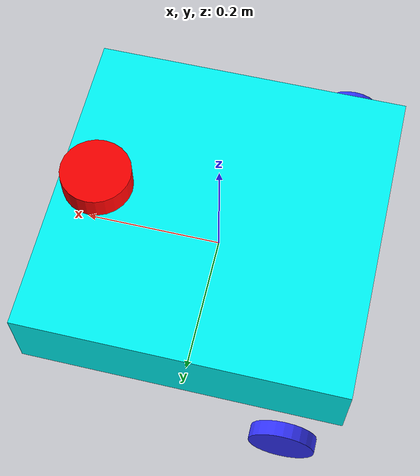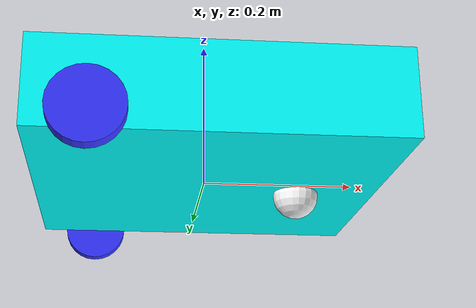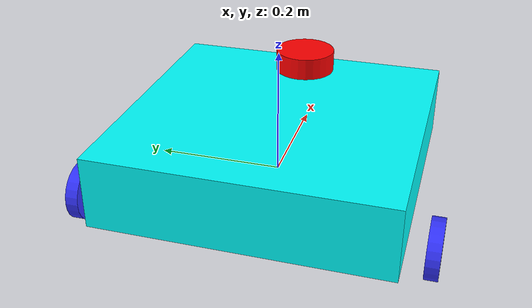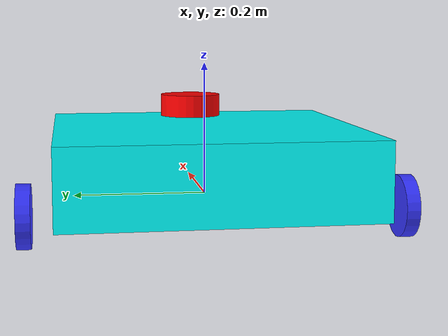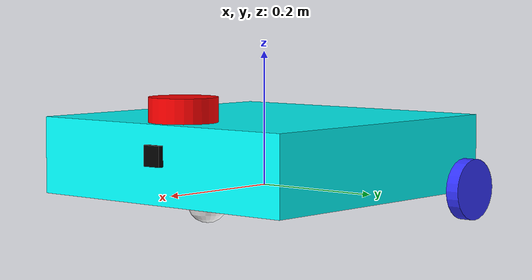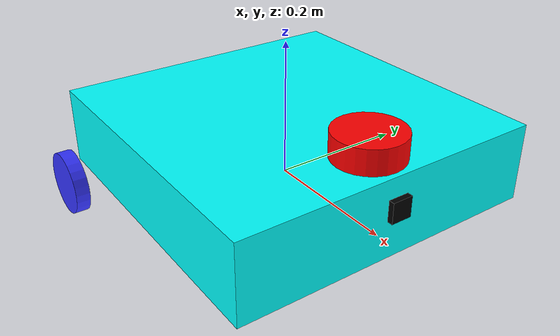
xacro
<?xml version="1.0"?>
<robot xmlns:xacro="http://www.ros.org/wiki/xacro"  name="robot">

    <xacro:include filename="robot_core.xacro" />

    <xacro:include filename="gazebo_control.xacro" />
    <xacro:include filename="lidar.xacro" />
    <xacro:include filename="camera.xacro" />
    <xacro:include filename="imu.xacro" />

</robot>

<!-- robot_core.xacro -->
<robot xmlns:xacro="http://www.ros.org/wiki/xacro" >

    <xacro:include filename="inertial_macros.xacro"/>

    <xacro:property name="chassis_length" value="0.457"/>
    <xacro:property name="chassis_width" value="0.457"/>
    <xacro:property name="chassis_height" value="0.114"/>
    <xacro:property name="chassis_mass" value="1.5"/>
    <xacro:property name="wheel_radius" value="0.045"/>
    <xacro:property name="wheel_thickness" value="0.020"/>
    <xacro:property name="wheel_mass" value="0.07"/>
    <xacro:property name="wheel_offset_x" value="0.226"/>
    <xacro:property name="wheel_offset_y" value="0.2685"/>
    <xacro:property name="wheel_offset_z" value="0.01"/>
    <xacro:property name="caster_wheel_radius" value="0.03"/>
    <xacro:property name="caster_wheel_mass" value="0.01"/>
    <xacro:property name="caster_wheel_offset_x" value="0.08"/>
    <xacro:property name="caster_wheel_offset_z" value="${wheel_offset_z - wheel_radius + caster_wheel_radius}"/>

    <material name="white">
        <color rgba="1 1 1 1" />
    </material>

    <material name="orange">
        <color rgba="1 0.3 0.1 1"/>
    </material>

    <material name="blue">
        <color rgba="0.2 0.2 1 1"/>
    </material>

    <material name="black">
        <color rgba="0 0 0 1"/>
    </material>

    <material name="red">
        <color rgba="1 0 0 1"/>
    </material>
    <material name="Cyan">
        <color rgba="0 1.0 1.0 1.0"/>
    </material>

    <!-- BASE LINK -->

    <link name="base_link">

    </link>

    <!-- BASE_FOOTPRINT LINK -->

    <joint name="base_footprint_joint" type="fixed">
        <parent link="base_link"/>
        <child link="base_footprint"/>
        <origin xyz="0 0 0" rpy="0 0 0"/>
    </joint>

    <link name="base_footprint">
    </link>

    <!-- CHASSIS LINK -->

    <joint name="chassis_joint" type="fixed">
        <parent link="base_link"/>
        <child link="chassis"/>
        <origin xyz="${-wheel_offset_x} 0 ${-wheel_offset_z}"/>
    </joint>

    <link name="chassis">
        <visual>
            <origin xyz="${chassis_length/2} 0 ${chassis_height/2}"/>
            <geometry>
                <box size="${chassis_length} ${chassis_width} ${chassis_height}"/>
            </geometry>
            <material name="Cyan"/>
        </visual>
        <collision>
            <origin xyz="${chassis_length/2} 0 ${chassis_height/2}"/>
            <geometry>
                <box size="${chassis_length} ${chassis_width} ${chassis_height}"/>
            </geometry>
        </collision>
        <xacro:inertial_box mass="0.5" x="${chassis_length}" y="${chassis_width}" z="${chassis_height}">
            <origin xyz="${chassis_length/2} 0 ${chassis_height/2}" rpy="0 0 0"/>
        </xacro:inertial_box>
    </link>

    <gazebo reference="chassis">
        <material>Gazebo/Cyan</material>
    </gazebo>

    <!-- LEFT WHEEL LINK -->

    <joint name="left_wheel_joint" type="continuous">
        <parent link="base_link"/>
        <child link="left_wheel"/>
        <origin xyz="-0.15 ${wheel_offset_y} 0" rpy="-${pi/2} 0 0" />
        <axis xyz="0 0 1"/>
    </joint>

    <link name="left_wheel">
        <visual>
            <geometry>
                <cylinder radius="${wheel_radius}" length="${wheel_thickness}"/>
            </geometry>
            <material name="blue"/>
        </visual>
        <collision>
            <geometry>
                <sphere radius="${wheel_radius}"/>
            </geometry>
        </collision>
        <xacro:inertial_cylinder mass="${wheel_mass}" length="${wheel_thickness}" radius="${wheel_radius}">
            <origin xyz="0 0 0" rpy="0 0 0"/>
        </xacro:inertial_cylinder>
    </link>

    <gazebo reference="left_wheel">
        <material>Gazebo/Blue</material>
    </gazebo>

    <!-- RIGHT WHEEL LINK -->

    <joint name="right_wheel_joint" type="continuous">
        <parent link="base_link"/>
        <child link="right_wheel"/>
        <origin xyz="-0.15 ${-wheel_offset_y} 0" rpy="${pi/2} 0 0" />
        <axis xyz="0 0 -1"/>
    </joint>

    <link name="right_wheel">
        <visual>
            <geometry>
                <cylinder radius="${wheel_radius}" length="${wheel_thickness}"/>
            </geometry>
            <material name="blue"/>
        </visual>
        <collision>
            <geometry>
                <sphere radius="${wheel_radius}"/>
            </geometry>
        </collision>
        <xacro:inertial_cylinder mass="${wheel_mass}" length="${wheel_thickness}" radius="${wheel_radius}">
            <origin xyz="0 0 0" rpy="0 0 0"/>
        </xacro:inertial_cylinder>
    </link>

    <gazebo reference="right_wheel">
        <material>Gazebo/Blue</material>
    </gazebo>

    <!-- CASTER WHEEL LINK -->

    <joint name="caster_wheel_joint" type="fixed">
        <parent link="chassis"/>
        <child link="caster_wheel"/>
        <origin xyz=".35 0 ${caster_wheel_offset_z}"/>
    </joint>

    <link name="caster_wheel">
        <visual>
            <geometry>
                <sphere radius="${caster_wheel_radius}"/>
            </geometry>
            <material name="white"/>
        </visual>
        <collision>
            <geometry>
                <sphere radius="${caster_wheel_radius}"/>
            </geometry>
        </collision>
        <xacro:inertial_sphere mass="${caster_wheel_mass}" radius="${caster_wheel_radius}">
            <origin xyz="0 0 0" rpy="0 0 0"/>
        </xacro:inertial_sphere>
    </link>

    <gazebo reference="caster_wheel">
        <material>Gazebo/White</material>
        <mu1 value="0.001"/>
        <mu2 value="0.001"/>
    </gazebo>

</robot>

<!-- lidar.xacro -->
<robot xmlns:xacro="http://www.ros.org/wiki/xacro" >

    <joint name="laser_joint" type="fixed">
        <parent link="chassis"/>
        <child link="laser"/>
        <origin xyz="0.4 0 0.13" rpy="0 0 3.14"/>
    </joint>

    <link name="laser">
        <visual>
            <geometry>
                <cylinder radius="0.05" length="0.04"/>
            </geometry>
            <material name="red"/>
        </visual>
        <collision>
            <geometry>
                <cylinder radius="0.05" length="0.04"/>
            </geometry>
        </collision>
        <xacro:inertial_cylinder mass="0.1" length="0.04" radius="0.05">
            <origin xyz="0 0 0" rpy="0 0 3.14"/>
        </xacro:inertial_cylinder>
    </link>

    <gazebo reference="laser">
        <material>Gazebo/Red</material>

        <sensor name="laser" type="gpu_lidar">
            <pose> 0 0 0 0 0 0 </pose>
            <visualize>false</visualize>
            <update_rate>10</update_rate>
            <lidar>
                <scan>
                    <horizontal>
                        <samples>360</samples>
                        <min_angle>-3.14</min_angle>
                        <max_angle>3.14</max_angle>
                    </horizontal>
                </scan>
                <range>
                    <min>0.3</min>
                    <max>12</max>
                </range>
            </lidar>
            <topic>scan</topic>
            <gz_frame_id>laser_frame</gz_frame_id>
        </sensor>
    </gazebo>

</robot>

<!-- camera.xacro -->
<robot xmlns:xacro="http://www.ros.org/wiki/xacro" >

    <joint name="camera_joint" type="fixed">
        <parent link="chassis"/>
        <child link="camera_link"/>
         <origin xyz="0.46 0 0.07" rpy="0 0 0"/>
    </joint>

    <link name="camera_link">
        <visual>
            <origin xyz="0 0 0" rpy="0 0 0"/>
            <geometry>
                <box size="0.010 0.03 0.03"/>
            </geometry>
            <material name="black"/>
        </visual>
        <collision>
            <origin xyz="0 0 0" rpy="0 0 0"/>
            <geometry>
                <box size="0.010 0.03 0.03"/>
            </geometry>
        </collision>

    </link>

    <joint name="camera_optical_joint" type="fixed">
        <parent link="camera_link"/>
        <child link="camera_link_optical"/>
        <origin xyz="0 0 0" rpy="${-pi/2} 0 ${-pi/2}"/>
    </joint>

    <link name="camera_link_optical"></link>

    <gazebo reference="camera_link">
        <material>Gazebo/Black</material>

        <sensor name="camera" type="camera">
            <pose> 0 0 0 0 0 0 </pose>
            <visualize>true</visualize>
            <update_rate>10</update_rate>
            <camera>
                <camera_info_topic>camera/camera_info</camera_info_topic>
                <horizontal_fov>1.089</horizontal_fov>
                <image>
                    <format>R8G8B8</format>
                    <width>640</width>
                    <height>480</height>
                </image>
                <clip>
                    <near>0.05</near>
                    <far>8.0</far>
                </clip>
            </camera>
            <topic>camera/image_raw</topic>
            <gz_frame_id>camera_link_optical</gz_frame_id>
        </sensor>
    </gazebo>

</robot>

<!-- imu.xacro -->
<robot xmlns:xacro="http://www.ros.org/wiki/xacro" >
    <!-- ====================== IMU ====================== -->
    <joint name="imu_joint" type="fixed">
        <parent link="chassis"/>
        <child link="imu_l"/>
        <!-- Mount IMU near the center of the chassis -->
        <origin xyz=".18 0 0.03" rpy="0 0 0"/>
    </joint>

    <link name="imu_l">
        <visual>
            <origin xyz="0 0 0" rpy="0 0 0"/>
            <geometry>
            <box size="0.02 0.02 0.01"/>
            </geometry>
            <material name="black">
            <color rgba="0 1 1 1"/>
            </material>
        </visual>

        <collision>
            <origin xyz="0 0 0" rpy="0 0 0"/>
            <geometry>
            <box size="0.02 0.02 0.01"/>
            </geometry>
        </collision>

    </link>

    <gazebo reference="imu_l">
        <sensor name="imu_sensor" type="imu">
            <always_on>true</always_on>
            <update_rate>100.0</update_rate>
            <visualize>false</visualize>
            <topic>imu/data</topic>
            <plugin name="imu_plugin" filename="libgazebo_ros_imu_sensor.so">
            <ros>
                <namespace>/</namespace>
                <remapping>~/out:=imu/data</remapping>
            </ros>
            <gaussian_noise>0.0002</gaussian_noise>
            </plugin>
        </sensor>
    </gazebo>

</robot>
